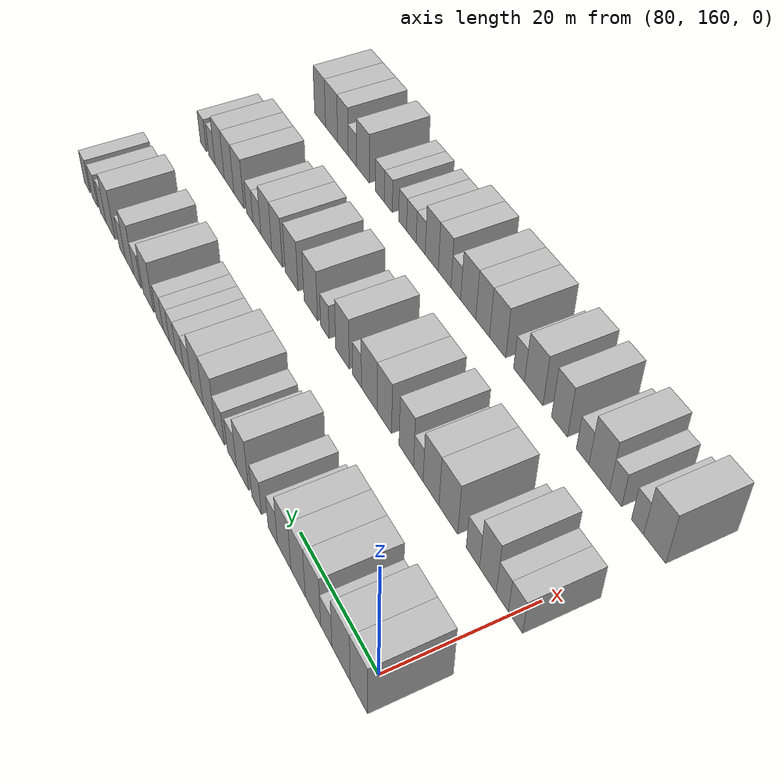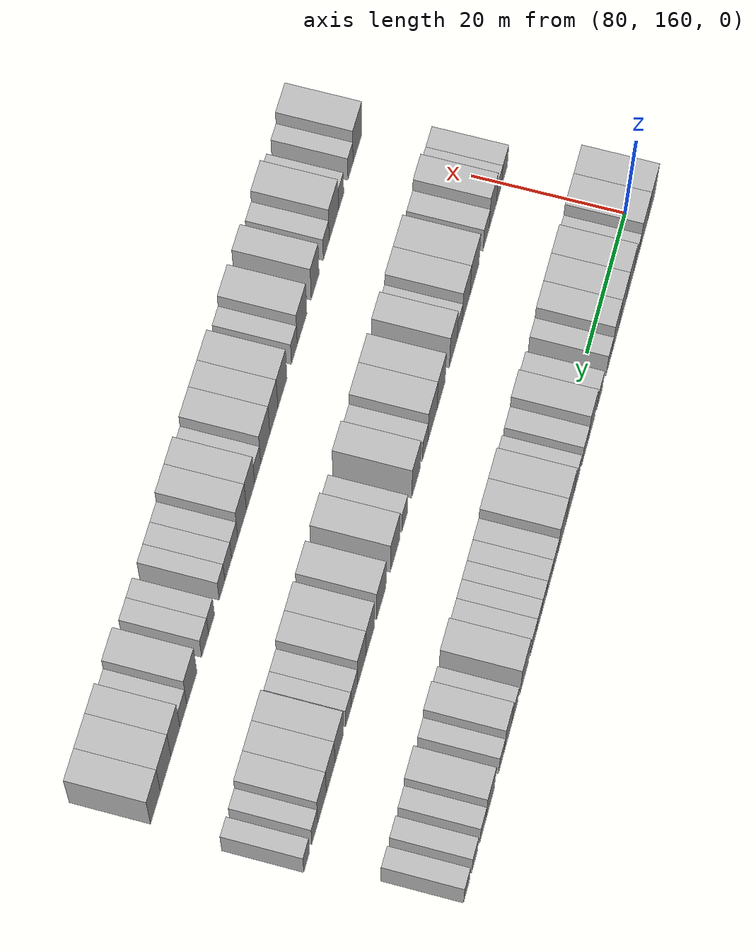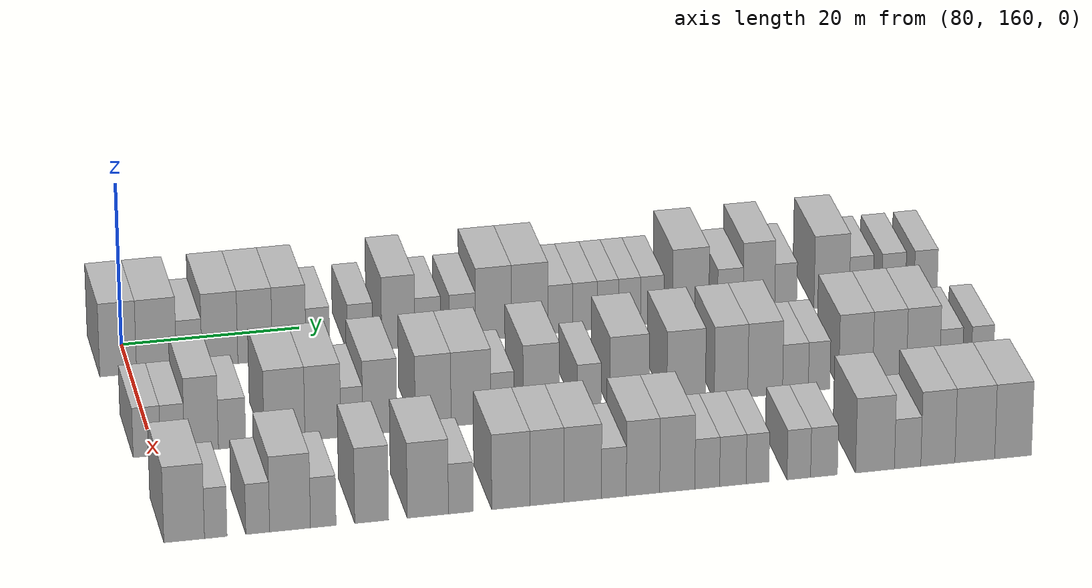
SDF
<sdf version="1.6">
 <world name="default">
  <model name="building_628">
   <static>1</static>
   <pose>82.0000 158.6415 0 0.000000 0.000000 0.000000</pose>
   <link name="link">
    <pose>0 0 4.50 0 0 0</pose>
    <collision name="collision"><geometry><box><size>10.0000 4.0877 9.0000</size></box></geometry></collision>
    <visual name="visual">
     <cast_shadows>0</cast_shadows>
     <geometry><box><size>10.0000 4.0877 9.0000</size></box></geometry>
     <material>
      <script>
       <uri>model://HANNAS_wall/materials/scripts</uri>
       <uri>model://HANNAS_wall/materials/textures</uri>
       <name>vrc/HANNAS_wall</name>
      </script>
     </material>
    </visual>
   </link>
  </model>
  <model name="building_629">
   <static>1</static>
   <pose>82.0000 162.9138 0 0.000000 0.000000 0.000000</pose>
   <link name="link">
    <pose>0 0 4.50 0 0 0</pose>
    <collision name="collision"><geometry><box><size>10.0000 4.4569 9.0000</size></box></geometry></collision>
    <visual name="visual">
     <cast_shadows>0</cast_shadows>
     <geometry><box><size>10.0000 4.4569 9.0000</size></box></geometry>
     <material>
      <script>
       <uri>model://HANNAS_wall/materials/scripts</uri>
       <uri>model://HANNAS_wall/materials/textures</uri>
       <name>vrc/HANNAS_wall</name>
      </script>
     </material>
    </visual>
   </link>
  </model>
  <model name="building_630">
   <static>1</static>
   <pose>82.0000 166.5588 0 0.000000 0.000000 0.000000</pose>
   <link name="link">
    <pose>0 0 3.00 0 0 0</pose>
    <collision name="collision"><geometry><box><size>10.0000 2.8331 6.0000</size></box></geometry></collision>
    <visual name="visual">
     <cast_shadows>0</cast_shadows>
     <geometry><box><size>10.0000 2.8331 6.0000</size></box></geometry>
     <material>
      <script>
       <uri>model://HANNAS_wall/materials/scripts</uri>
       <uri>model://HANNAS_wall/materials/textures</uri>
       <name>vrc/HANNAS_wall</name>
      </script>
     </material>
    </visual>
   </link>
  </model>
  <model name="building_631">
   <static>1</static>
   <pose>82.0000 169.9791 0 0.000000 0.000000 0.000000</pose>
   <link name="link">
    <pose>0 0 4.50 0 0 0</pose>
    <collision name="collision"><geometry><box><size>10.0000 4.0073 9.0000</size></box></geometry></collision>
    <visual name="visual">
     <cast_shadows>0</cast_shadows>
     <geometry><box><size>10.0000 4.0073 9.0000</size></box></geometry>
     <material>
      <script>
       <uri>model://HANNAS_wall/materials/scripts</uri>
       <uri>model://HANNAS_wall/materials/textures</uri>
       <name>vrc/HANNAS_wall</name>
      </script>
     </material>
    </visual>
   </link>
  </model>
  <model name="building_632">
   <static>1</static>
   <pose>82.0000 173.9178 0 0.000000 0.000000 0.000000</pose>
   <link name="link">
    <pose>0 0 4.50 0 0 0</pose>
    <collision name="collision"><geometry><box><size>10.0000 3.8701 9.0000</size></box></geometry></collision>
    <visual name="visual">
     <cast_shadows>0</cast_shadows>
     <geometry><box><size>10.0000 3.8701 9.0000</size></box></geometry>
     <material>
      <script>
       <uri>model://HANNAS_wall/materials/scripts</uri>
       <uri>model://HANNAS_wall/materials/textures</uri>
       <name>vrc/HANNAS_wall</name>
      </script>
     </material>
    </visual>
   </link>
  </model>
  <model name="building_633">
   <static>1</static>
   <pose>82.0000 177.7378 0 0.000000 0.000000 0.000000</pose>
   <link name="link">
    <pose>0 0 4.50 0 0 0</pose>
    <collision name="collision"><geometry><box><size>10.0000 3.7699 9.0000</size></box></geometry></collision>
    <visual name="visual">
     <cast_shadows>0</cast_shadows>
     <geometry><box><size>10.0000 3.7699 9.0000</size></box></geometry>
     <material>
      <script>
       <uri>model://HANNAS_wall/materials/scripts</uri>
       <uri>model://HANNAS_wall/materials/textures</uri>
       <name>vrc/HANNAS_wall</name>
      </script>
     </material>
    </visual>
   </link>
  </model>
  <model name="building_634">
   <static>1</static>
   <pose>82.0000 180.9577 0 0.000000 0.000000 0.000000</pose>
   <link name="link">
    <pose>0 0 3.00 0 0 0</pose>
    <collision name="collision"><geometry><box><size>10.0000 2.6698 6.0000</size></box></geometry></collision>
    <visual name="visual">
     <cast_shadows>0</cast_shadows>
     <geometry><box><size>10.0000 2.6698 6.0000</size></box></geometry>
     <material>
      <script>
       <uri>model://HANNAS_wall/materials/scripts</uri>
       <uri>model://HANNAS_wall/materials/textures</uri>
       <name>vrc/HANNAS_wall</name>
      </script>
     </material>
    </visual>
   </link>
  </model>
  <model name="building_635">
   <static>1</static>
   <pose>82.0000 185.7147 0 0.000000 0.000000 0.000000</pose>
   <link name="link">
    <pose>0 0 3.00 0 0 0</pose>
    <collision name="collision"><geometry><box><size>10.0000 2.8443 6.0000</size></box></geometry></collision>
    <visual name="visual">
     <cast_shadows>0</cast_shadows>
     <geometry><box><size>10.0000 2.8443 6.0000</size></box></geometry>
     <material>
      <script>
       <uri>model://HANNAS_wall/materials/scripts</uri>
       <uri>model://HANNAS_wall/materials/textures</uri>
       <name>vrc/HANNAS_wall</name>
      </script>
     </material>
    </visual>
   </link>
  </model>
  <model name="building_636">
   <static>1</static>
   <pose>82.0000 190.0058 0 0.000000 0.000000 0.000000</pose>
   <link name="link">
    <pose>0 0 4.50 0 0 0</pose>
    <collision name="collision"><geometry><box><size>10.0000 3.7380 9.0000</size></box></geometry></collision>
    <visual name="visual">
     <cast_shadows>0</cast_shadows>
     <geometry><box><size>10.0000 3.7380 9.0000</size></box></geometry>
     <material>
      <script>
       <uri>model://HANNAS_wall/materials/scripts</uri>
       <uri>model://HANNAS_wall/materials/textures</uri>
       <name>vrc/HANNAS_wall</name>
      </script>
     </material>
    </visual>
   </link>
  </model>
  <model name="building_637">
   <static>1</static>
   <pose>82.0000 193.3258 0 0.000000 0.000000 0.000000</pose>
   <link name="link">
    <pose>0 0 3.00 0 0 0</pose>
    <collision name="collision"><geometry><box><size>10.0000 2.9021 6.0000</size></box></geometry></collision>
    <visual name="visual">
     <cast_shadows>0</cast_shadows>
     <geometry><box><size>10.0000 2.9021 6.0000</size></box></geometry>
     <material>
      <script>
       <uri>model://HANNAS_wall/materials/scripts</uri>
       <uri>model://HANNAS_wall/materials/textures</uri>
       <name>vrc/HANNAS_wall</name>
      </script>
     </material>
    </visual>
   </link>
  </model>
  <model name="building_638">
   <static>1</static>
   <pose>82.0000 197.2572 0 0.000000 0.000000 0.000000</pose>
   <link name="link">
    <pose>0 0 3.00 0 0 0</pose>
    <collision name="collision"><geometry><box><size>10.0000 2.9607 6.0000</size></box></geometry></collision>
    <visual name="visual">
     <cast_shadows>0</cast_shadows>
     <geometry><box><size>10.0000 2.9607 6.0000</size></box></geometry>
     <material>
      <script>
       <uri>model://HANNAS_wall/materials/scripts</uri>
       <uri>model://HANNAS_wall/materials/textures</uri>
       <name>vrc/HANNAS_wall</name>
      </script>
     </material>
    </visual>
   </link>
  </model>
  <model name="building_639">
   <static>1</static>
   <pose>82.0000 200.7752 0 0.000000 0.000000 0.000000</pose>
   <link name="link">
    <pose>0 0 4.50 0 0 0</pose>
    <collision name="collision"><geometry><box><size>10.0000 4.0753 9.0000</size></box></geometry></collision>
    <visual name="visual">
     <cast_shadows>0</cast_shadows>
     <geometry><box><size>10.0000 4.0753 9.0000</size></box></geometry>
     <material>
      <script>
       <uri>model://HANNAS_wall/materials/scripts</uri>
       <uri>model://HANNAS_wall/materials/textures</uri>
       <name>vrc/HANNAS_wall</name>
      </script>
     </material>
    </visual>
   </link>
  </model>
  <model name="building_640">
   <static>1</static>
   <pose>82.0000 204.8756 0 0.000000 0.000000 0.000000</pose>
   <link name="link">
    <pose>0 0 4.50 0 0 0</pose>
    <collision name="collision"><geometry><box><size>10.0000 4.1255 9.0000</size></box></geometry></collision>
    <visual name="visual">
     <cast_shadows>0</cast_shadows>
     <geometry><box><size>10.0000 4.1255 9.0000</size></box></geometry>
     <material>
      <script>
       <uri>model://HANNAS_wall/materials/scripts</uri>
       <uri>model://HANNAS_wall/materials/textures</uri>
       <name>vrc/HANNAS_wall</name>
      </script>
     </material>
    </visual>
   </link>
  </model>
  <model name="building_641">
   <static>1</static>
   <pose>82.0000 208.3537 0 0.000000 0.000000 0.000000</pose>
   <link name="link">
    <pose>0 0 3.00 0 0 0</pose>
    <collision name="collision"><geometry><box><size>10.0000 2.8305 6.0000</size></box></geometry></collision>
    <visual name="visual">
     <cast_shadows>0</cast_shadows>
     <geometry><box><size>10.0000 2.8305 6.0000</size></box></geometry>
     <material>
      <script>
       <uri>model://HANNAS_wall/materials/scripts</uri>
       <uri>model://HANNAS_wall/materials/textures</uri>
       <name>vrc/HANNAS_wall</name>
      </script>
     </material>
    </visual>
   </link>
  </model>
  <model name="building_642">
   <static>1</static>
   <pose>82.0000 211.1578 0 0.000000 0.000000 0.000000</pose>
   <link name="link">
    <pose>0 0 3.00 0 0 0</pose>
    <collision name="collision"><geometry><box><size>10.0000 2.7777 6.0000</size></box></geometry></collision>
    <visual name="visual">
     <cast_shadows>0</cast_shadows>
     <geometry><box><size>10.0000 2.7777 6.0000</size></box></geometry>
     <material>
      <script>
       <uri>model://HANNAS_wall/materials/scripts</uri>
       <uri>model://HANNAS_wall/materials/textures</uri>
       <name>vrc/HANNAS_wall</name>
      </script>
     </material>
    </visual>
   </link>
  </model>
  <model name="building_643">
   <static>1</static>
   <pose>82.0000 213.7684 0 0.000000 0.000000 0.000000</pose>
   <link name="link">
    <pose>0 0 3.00 0 0 0</pose>
    <collision name="collision"><geometry><box><size>10.0000 2.4436 6.0000</size></box></geometry></collision>
    <visual name="visual">
     <cast_shadows>0</cast_shadows>
     <geometry><box><size>10.0000 2.4436 6.0000</size></box></geometry>
     <material>
      <script>
       <uri>model://HANNAS_wall/materials/scripts</uri>
       <uri>model://HANNAS_wall/materials/textures</uri>
       <name>vrc/HANNAS_wall</name>
      </script>
     </material>
    </visual>
   </link>
  </model>
  <model name="building_644">
   <static>1</static>
   <pose>82.0000 216.2495 0 0.000000 0.000000 0.000000</pose>
   <link name="link">
    <pose>0 0 3.00 0 0 0</pose>
    <collision name="collision"><geometry><box><size>10.0000 2.5188 6.0000</size></box></geometry></collision>
    <visual name="visual">
     <cast_shadows>0</cast_shadows>
     <geometry><box><size>10.0000 2.5188 6.0000</size></box></geometry>
     <material>
      <script>
       <uri>model://HANNAS_wall/materials/scripts</uri>
       <uri>model://HANNAS_wall/materials/textures</uri>
       <name>vrc/HANNAS_wall</name>
      </script>
     </material>
    </visual>
   </link>
  </model>
  <model name="building_645">
   <static>1</static>
   <pose>82.0000 218.8351 0 0.000000 0.000000 0.000000</pose>
   <link name="link">
    <pose>0 0 3.00 0 0 0</pose>
    <collision name="collision"><geometry><box><size>10.0000 2.6524 6.0000</size></box></geometry></collision>
    <visual name="visual">
     <cast_shadows>0</cast_shadows>
     <geometry><box><size>10.0000 2.6524 6.0000</size></box></geometry>
     <material>
      <script>
       <uri>model://HANNAS_wall/materials/scripts</uri>
       <uri>model://HANNAS_wall/materials/textures</uri>
       <name>vrc/HANNAS_wall</name>
      </script>
     </material>
    </visual>
   </link>
  </model>
  <model name="building_646">
   <static>1</static>
   <pose>82.0000 223.2501 0 0.000000 0.000000 0.000000</pose>
   <link name="link">
    <pose>0 0 4.50 0 0 0</pose>
    <collision name="collision"><geometry><box><size>10.0000 4.1776 9.0000</size></box></geometry></collision>
    <visual name="visual">
     <cast_shadows>0</cast_shadows>
     <geometry><box><size>10.0000 4.1776 9.0000</size></box></geometry>
     <material>
      <script>
       <uri>model://HANNAS_wall/materials/scripts</uri>
       <uri>model://HANNAS_wall/materials/textures</uri>
       <name>vrc/HANNAS_wall</name>
      </script>
     </material>
    </visual>
   </link>
  </model>
  <model name="building_647">
   <static>1</static>
   <pose>82.0000 227.7997 0 0.000000 0.000000 0.000000</pose>
   <link name="link">
    <pose>0 0 3.00 0 0 0</pose>
    <collision name="collision"><geometry><box><size>10.0000 2.9217 6.0000</size></box></geometry></collision>
    <visual name="visual">
     <cast_shadows>0</cast_shadows>
     <geometry><box><size>10.0000 2.9217 6.0000</size></box></geometry>
     <material>
      <script>
       <uri>model://HANNAS_wall/materials/scripts</uri>
       <uri>model://HANNAS_wall/materials/textures</uri>
       <name>vrc/HANNAS_wall</name>
      </script>
     </material>
    </visual>
   </link>
  </model>
  <model name="building_648">
   <static>1</static>
   <pose>82.0000 231.0891 0 0.000000 0.000000 0.000000</pose>
   <link name="link">
    <pose>0 0 4.50 0 0 0</pose>
    <collision name="collision"><geometry><box><size>10.0000 3.6570 9.0000</size></box></geometry></collision>
    <visual name="visual">
     <cast_shadows>0</cast_shadows>
     <geometry><box><size>10.0000 3.6570 9.0000</size></box></geometry>
     <material>
      <script>
       <uri>model://HANNAS_wall/materials/scripts</uri>
       <uri>model://HANNAS_wall/materials/textures</uri>
       <name>vrc/HANNAS_wall</name>
      </script>
     </material>
    </visual>
   </link>
  </model>
  <model name="building_649">
   <static>1</static>
   <pose>82.0000 234.1872 0 0.000000 0.000000 0.000000</pose>
   <link name="link">
    <pose>0 0 3.00 0 0 0</pose>
    <collision name="collision"><geometry><box><size>10.0000 2.5393 6.0000</size></box></geometry></collision>
    <visual name="visual">
     <cast_shadows>0</cast_shadows>
     <geometry><box><size>10.0000 2.5393 6.0000</size></box></geometry>
     <material>
      <script>
       <uri>model://HANNAS_wall/materials/scripts</uri>
       <uri>model://HANNAS_wall/materials/textures</uri>
       <name>vrc/HANNAS_wall</name>
      </script>
     </material>
    </visual>
   </link>
  </model>
  <model name="building_650">
   <static>1</static>
   <pose>82.0000 239.4980 0 0.000000 0.000000 0.000000</pose>
   <link name="link">
    <pose>0 0 4.50 0 0 0</pose>
    <collision name="collision"><geometry><box><size>10.0000 4.0824 9.0000</size></box></geometry></collision>
    <visual name="visual">
     <cast_shadows>0</cast_shadows>
     <geometry><box><size>10.0000 4.0824 9.0000</size></box></geometry>
     <material>
      <script>
       <uri>model://HANNAS_wall/materials/scripts</uri>
       <uri>model://HANNAS_wall/materials/textures</uri>
       <name>vrc/HANNAS_wall</name>
      </script>
     </material>
    </visual>
   </link>
  </model>
  <model name="building_651">
   <static>1</static>
   <pose>82.0000 242.9145 0 0.000000 0.000000 0.000000</pose>
   <link name="link">
    <pose>0 0 3.00 0 0 0</pose>
    <collision name="collision"><geometry><box><size>10.0000 2.7506 6.0000</size></box></geometry></collision>
    <visual name="visual">
     <cast_shadows>0</cast_shadows>
     <geometry><box><size>10.0000 2.7506 6.0000</size></box></geometry>
     <material>
      <script>
       <uri>model://HANNAS_wall/materials/scripts</uri>
       <uri>model://HANNAS_wall/materials/textures</uri>
       <name>vrc/HANNAS_wall</name>
      </script>
     </material>
    </visual>
   </link>
  </model>
  <model name="building_652">
   <static>1</static>
   <pose>82.0000 246.6687 0 0.000000 0.000000 0.000000</pose>
   <link name="link">
    <pose>0 0 3.00 0 0 0</pose>
    <collision name="collision"><geometry><box><size>10.0000 2.7577 6.0000</size></box></geometry></collision>
    <visual name="visual">
     <cast_shadows>0</cast_shadows>
     <geometry><box><size>10.0000 2.7577 6.0000</size></box></geometry>
     <material>
      <script>
       <uri>model://HANNAS_wall/materials/scripts</uri>
       <uri>model://HANNAS_wall/materials/textures</uri>
       <name>vrc/HANNAS_wall</name>
      </script>
     </material>
    </visual>
   </link>
  </model>
  <model name="building_653">
   <static>1</static>
   <pose>82.0000 250.3901 0 0.000000 0.000000 0.000000</pose>
   <link name="link">
    <pose>0 0 3.00 0 0 0</pose>
    <collision name="collision"><geometry><box><size>10.0000 2.6852 6.0000</size></box></geometry></collision>
    <visual name="visual">
     <cast_shadows>0</cast_shadows>
     <geometry><box><size>10.0000 2.6852 6.0000</size></box></geometry>
     <material>
      <script>
       <uri>model://HANNAS_wall/materials/scripts</uri>
       <uri>model://HANNAS_wall/materials/textures</uri>
       <name>vrc/HANNAS_wall</name>
      </script>
     </material>
    </visual>
   </link>
  </model>
  <model name="building_816">
   <static>1</static>
   <pose>101.0000 159.0080 0 0.000000 0.000000 0.000000</pose>
   <link name="link">
    <pose>0 0 3.00 0 0 0</pose>
    <collision name="collision"><geometry><box><size>10.0000 2.9730 6.0000</size></box></geometry></collision>
    <visual name="visual">
     <cast_shadows>0</cast_shadows>
     <geometry><box><size>10.0000 2.9730 6.0000</size></box></geometry>
     <material>
      <script>
       <uri>model://HANNAS_wall/materials/scripts</uri>
       <uri>model://HANNAS_wall/materials/textures</uri>
       <name>vrc/HANNAS_wall</name>
      </script>
     </material>
    </visual>
   </link>
  </model>
  <model name="building_817">
   <static>1</static>
   <pose>101.0000 161.8011 0 0.000000 0.000000 0.000000</pose>
   <link name="link">
    <pose>0 0 3.00 0 0 0</pose>
    <collision name="collision"><geometry><box><size>10.0000 2.6131 6.0000</size></box></geometry></collision>
    <visual name="visual">
     <cast_shadows>0</cast_shadows>
     <geometry><box><size>10.0000 2.6131 6.0000</size></box></geometry>
     <material>
      <script>
       <uri>model://HANNAS_wall/materials/scripts</uri>
       <uri>model://HANNAS_wall/materials/textures</uri>
       <name>vrc/HANNAS_wall</name>
      </script>
     </material>
    </visual>
   </link>
  </model>
  <model name="building_818">
   <static>1</static>
   <pose>101.0000 164.9502 0 0.000000 0.000000 0.000000</pose>
   <link name="link">
    <pose>0 0 4.50 0 0 0</pose>
    <collision name="collision"><geometry><box><size>10.0000 3.6851 9.0000</size></box></geometry></collision>
    <visual name="visual">
     <cast_shadows>0</cast_shadows>
     <geometry><box><size>10.0000 3.6851 9.0000</size></box></geometry>
     <material>
      <script>
       <uri>model://HANNAS_wall/materials/scripts</uri>
       <uri>model://HANNAS_wall/materials/textures</uri>
       <name>vrc/HANNAS_wall</name>
      </script>
     </material>
    </visual>
   </link>
  </model>
  <model name="building_819">
   <static>1</static>
   <pose>101.0000 168.2881 0 0.000000 0.000000 0.000000</pose>
   <link name="link">
    <pose>0 0 3.00 0 0 0</pose>
    <collision name="collision"><geometry><box><size>10.0000 2.9908 6.0000</size></box></geometry></collision>
    <visual name="visual">
     <cast_shadows>0</cast_shadows>
     <geometry><box><size>10.0000 2.9908 6.0000</size></box></geometry>
     <material>
      <script>
       <uri>model://HANNAS_wall/materials/scripts</uri>
       <uri>model://HANNAS_wall/materials/textures</uri>
       <name>vrc/HANNAS_wall</name>
      </script>
     </material>
    </visual>
   </link>
  </model>
  <model name="building_820">
   <static>1</static>
   <pose>101.0000 174.0157 0 0.000000 0.000000 0.000000</pose>
   <link name="link">
    <pose>0 0 4.50 0 0 0</pose>
    <collision name="collision"><geometry><box><size>10.0000 4.4643 9.0000</size></box></geometry></collision>
    <visual name="visual">
     <cast_shadows>0</cast_shadows>
     <geometry><box><size>10.0000 4.4643 9.0000</size></box></geometry>
     <material>
      <script>
       <uri>model://HANNAS_wall/materials/scripts</uri>
       <uri>model://HANNAS_wall/materials/textures</uri>
       <name>vrc/HANNAS_wall</name>
      </script>
     </material>
    </visual>
   </link>
  </model>
  <model name="building_821">
   <static>1</static>
   <pose>101.0000 178.2155 0 0.000000 0.000000 0.000000</pose>
   <link name="link">
    <pose>0 0 4.50 0 0 0</pose>
    <collision name="collision"><geometry><box><size>10.0000 3.9353 9.0000</size></box></geometry></collision>
    <visual name="visual">
     <cast_shadows>0</cast_shadows>
     <geometry><box><size>10.0000 3.9353 9.0000</size></box></geometry>
     <material>
      <script>
       <uri>model://HANNAS_wall/materials/scripts</uri>
       <uri>model://HANNAS_wall/materials/textures</uri>
       <name>vrc/HANNAS_wall</name>
      </script>
     </material>
    </visual>
   </link>
  </model>
  <model name="building_822">
   <static>1</static>
   <pose>101.0000 181.3901 0 0.000000 0.000000 0.000000</pose>
   <link name="link">
    <pose>0 0 3.00 0 0 0</pose>
    <collision name="collision"><geometry><box><size>10.0000 2.4139 6.0000</size></box></geometry></collision>
    <visual name="visual">
     <cast_shadows>0</cast_shadows>
     <geometry><box><size>10.0000 2.4139 6.0000</size></box></geometry>
     <material>
      <script>
       <uri>model://HANNAS_wall/materials/scripts</uri>
       <uri>model://HANNAS_wall/materials/textures</uri>
       <name>vrc/HANNAS_wall</name>
      </script>
     </material>
    </visual>
   </link>
  </model>
  <model name="building_823">
   <static>1</static>
   <pose>101.0000 184.4804 0 0.000000 0.000000 0.000000</pose>
   <link name="link">
    <pose>0 0 4.50 0 0 0</pose>
    <collision name="collision"><geometry><box><size>10.0000 3.7667 9.0000</size></box></geometry></collision>
    <visual name="visual">
     <cast_shadows>0</cast_shadows>
     <geometry><box><size>10.0000 3.7667 9.0000</size></box></geometry>
     <material>
      <script>
       <uri>model://HANNAS_wall/materials/scripts</uri>
       <uri>model://HANNAS_wall/materials/textures</uri>
       <name>vrc/HANNAS_wall</name>
      </script>
     </material>
    </visual>
   </link>
  </model>
  <model name="building_824">
   <static>1</static>
   <pose>101.0000 190.3403 0 0.000000 0.000000 0.000000</pose>
   <link name="link">
    <pose>0 0 4.50 0 0 0</pose>
    <collision name="collision"><geometry><box><size>10.0000 3.9529 9.0000</size></box></geometry></collision>
    <visual name="visual">
     <cast_shadows>0</cast_shadows>
     <geometry><box><size>10.0000 3.9529 9.0000</size></box></geometry>
     <material>
      <script>
       <uri>model://HANNAS_wall/materials/scripts</uri>
       <uri>model://HANNAS_wall/materials/textures</uri>
       <name>vrc/HANNAS_wall</name>
      </script>
     </material>
    </visual>
   </link>
  </model>
  <model name="building_825">
   <static>1</static>
   <pose>101.0000 194.5216 0 0.000000 0.000000 0.000000</pose>
   <link name="link">
    <pose>0 0 4.50 0 0 0</pose>
    <collision name="collision"><geometry><box><size>10.0000 4.4097 9.0000</size></box></geometry></collision>
    <visual name="visual">
     <cast_shadows>0</cast_shadows>
     <geometry><box><size>10.0000 4.4097 9.0000</size></box></geometry>
     <material>
      <script>
       <uri>model://HANNAS_wall/materials/scripts</uri>
       <uri>model://HANNAS_wall/materials/textures</uri>
       <name>vrc/HANNAS_wall</name>
      </script>
     </material>
    </visual>
   </link>
  </model>
  <model name="building_826">
   <static>1</static>
   <pose>101.0000 198.0051 0 0.000000 0.000000 0.000000</pose>
   <link name="link">
    <pose>0 0 3.00 0 0 0</pose>
    <collision name="collision"><geometry><box><size>10.0000 2.5573 6.0000</size></box></geometry></collision>
    <visual name="visual">
     <cast_shadows>0</cast_shadows>
     <geometry><box><size>10.0000 2.5573 6.0000</size></box></geometry>
     <material>
      <script>
       <uri>model://HANNAS_wall/materials/scripts</uri>
       <uri>model://HANNAS_wall/materials/textures</uri>
       <name>vrc/HANNAS_wall</name>
      </script>
     </material>
    </visual>
   </link>
  </model>
  <model name="building_827">
   <static>1</static>
   <pose>101.0000 202.2995 0 0.000000 0.000000 0.000000</pose>
   <link name="link">
    <pose>0 0 4.50 0 0 0</pose>
    <collision name="collision"><geometry><box><size>10.0000 4.0315 9.0000</size></box></geometry></collision>
    <visual name="visual">
     <cast_shadows>0</cast_shadows>
     <geometry><box><size>10.0000 4.0315 9.0000</size></box></geometry>
     <material>
      <script>
       <uri>model://HANNAS_wall/materials/scripts</uri>
       <uri>model://HANNAS_wall/materials/textures</uri>
       <name>vrc/HANNAS_wall</name>
      </script>
     </material>
    </visual>
   </link>
  </model>
  <model name="building_828">
   <static>1</static>
   <pose>101.0000 207.6321 0 0.000000 0.000000 0.000000</pose>
   <link name="link">
    <pose>0 0 3.00 0 0 0</pose>
    <collision name="collision"><geometry><box><size>10.0000 2.6338 6.0000</size></box></geometry></collision>
    <visual name="visual">
     <cast_shadows>0</cast_shadows>
     <geometry><box><size>10.0000 2.6338 6.0000</size></box></geometry>
     <material>
      <script>
       <uri>model://HANNAS_wall/materials/scripts</uri>
       <uri>model://HANNAS_wall/materials/textures</uri>
       <name>vrc/HANNAS_wall</name>
      </script>
     </material>
    </visual>
   </link>
  </model>
  <model name="building_829">
   <static>1</static>
   <pose>101.0000 212.1212 0 0.000000 0.000000 0.000000</pose>
   <link name="link">
    <pose>0 0 4.50 0 0 0</pose>
    <collision name="collision"><geometry><box><size>10.0000 4.3445 9.0000</size></box></geometry></collision>
    <visual name="visual">
     <cast_shadows>0</cast_shadows>
     <geometry><box><size>10.0000 4.3445 9.0000</size></box></geometry>
     <material>
      <script>
       <uri>model://HANNAS_wall/materials/scripts</uri>
       <uri>model://HANNAS_wall/materials/textures</uri>
       <name>vrc/HANNAS_wall</name>
      </script>
     </material>
    </visual>
   </link>
  </model>
  <model name="building_830">
   <static>1</static>
   <pose>101.0000 218.4484 0 0.000000 0.000000 0.000000</pose>
   <link name="link">
    <pose>0 0 4.50 0 0 0</pose>
    <collision name="collision"><geometry><box><size>10.0000 4.3099 9.0000</size></box></geometry></collision>
    <visual name="visual">
     <cast_shadows>0</cast_shadows>
     <geometry><box><size>10.0000 4.3099 9.0000</size></box></geometry>
     <material>
      <script>
       <uri>model://HANNAS_wall/materials/scripts</uri>
       <uri>model://HANNAS_wall/materials/textures</uri>
       <name>vrc/HANNAS_wall</name>
      </script>
     </material>
    </visual>
   </link>
  </model>
  <model name="building_831">
   <static>1</static>
   <pose>101.0000 223.4815 0 0.000000 0.000000 0.000000</pose>
   <link name="link">
    <pose>0 0 4.50 0 0 0</pose>
    <collision name="collision"><geometry><box><size>10.0000 3.7563 9.0000</size></box></geometry></collision>
    <visual name="visual">
     <cast_shadows>0</cast_shadows>
     <geometry><box><size>10.0000 3.7563 9.0000</size></box></geometry>
     <material>
      <script>
       <uri>model://HANNAS_wall/materials/scripts</uri>
       <uri>model://HANNAS_wall/materials/textures</uri>
       <name>vrc/HANNAS_wall</name>
      </script>
     </material>
    </visual>
   </link>
  </model>
  <model name="building_832">
   <static>1</static>
   <pose>101.0000 227.3154 0 0.000000 0.000000 0.000000</pose>
   <link name="link">
    <pose>0 0 4.50 0 0 0</pose>
    <collision name="collision"><geometry><box><size>10.0000 3.9116 9.0000</size></box></geometry></collision>
    <visual name="visual">
     <cast_shadows>0</cast_shadows>
     <geometry><box><size>10.0000 3.9116 9.0000</size></box></geometry>
     <material>
      <script>
       <uri>model://HANNAS_wall/materials/scripts</uri>
       <uri>model://HANNAS_wall/materials/textures</uri>
       <name>vrc/HANNAS_wall</name>
      </script>
     </material>
    </visual>
   </link>
  </model>
  <model name="building_833">
   <static>1</static>
   <pose>101.0000 230.7249 0 0.000000 0.000000 0.000000</pose>
   <link name="link">
    <pose>0 0 3.00 0 0 0</pose>
    <collision name="collision"><geometry><box><size>10.0000 2.9072 6.0000</size></box></geometry></collision>
    <visual name="visual">
     <cast_shadows>0</cast_shadows>
     <geometry><box><size>10.0000 2.9072 6.0000</size></box></geometry>
     <material>
      <script>
       <uri>model://HANNAS_wall/materials/scripts</uri>
       <uri>model://HANNAS_wall/materials/textures</uri>
       <name>vrc/HANNAS_wall</name>
      </script>
     </material>
    </visual>
   </link>
  </model>
  <model name="building_834">
   <static>1</static>
   <pose>101.0000 233.3895 0 0.000000 0.000000 0.000000</pose>
   <link name="link">
    <pose>0 0 3.00 0 0 0</pose>
    <collision name="collision"><geometry><box><size>10.0000 2.4219 6.0000</size></box></geometry></collision>
    <visual name="visual">
     <cast_shadows>0</cast_shadows>
     <geometry><box><size>10.0000 2.4219 6.0000</size></box></geometry>
     <material>
      <script>
       <uri>model://HANNAS_wall/materials/scripts</uri>
       <uri>model://HANNAS_wall/materials/textures</uri>
       <name>vrc/HANNAS_wall</name>
      </script>
     </material>
    </visual>
   </link>
  </model>
  <model name="building_835">
   <static>1</static>
   <pose>101.0000 237.5209 0 0.000000 0.000000 0.000000</pose>
   <link name="link">
    <pose>0 0 4.50 0 0 0</pose>
    <collision name="collision"><geometry><box><size>10.0000 3.8409 9.0000</size></box></geometry></collision>
    <visual name="visual">
     <cast_shadows>0</cast_shadows>
     <geometry><box><size>10.0000 3.8409 9.0000</size></box></geometry>
     <material>
      <script>
       <uri>model://HANNAS_wall/materials/scripts</uri>
       <uri>model://HANNAS_wall/materials/textures</uri>
       <name>vrc/HANNAS_wall</name>
      </script>
     </material>
    </visual>
   </link>
  </model>
  <model name="building_836">
   <static>1</static>
   <pose>101.0000 241.3496 0 0.000000 0.000000 0.000000</pose>
   <link name="link">
    <pose>0 0 4.50 0 0 0</pose>
    <collision name="collision"><geometry><box><size>10.0000 3.8165 9.0000</size></box></geometry></collision>
    <visual name="visual">
     <cast_shadows>0</cast_shadows>
     <geometry><box><size>10.0000 3.8165 9.0000</size></box></geometry>
     <material>
      <script>
       <uri>model://HANNAS_wall/materials/scripts</uri>
       <uri>model://HANNAS_wall/materials/textures</uri>
       <name>vrc/HANNAS_wall</name>
      </script>
     </material>
    </visual>
   </link>
  </model>
  <model name="building_837">
   <static>1</static>
   <pose>101.0000 245.1427 0 0.000000 0.000000 0.000000</pose>
   <link name="link">
    <pose>0 0 4.50 0 0 0</pose>
    <collision name="collision"><geometry><box><size>10.0000 3.7698 9.0000</size></box></geometry></collision>
    <visual name="visual">
     <cast_shadows>0</cast_shadows>
     <geometry><box><size>10.0000 3.7698 9.0000</size></box></geometry>
     <material>
      <script>
       <uri>model://HANNAS_wall/materials/scripts</uri>
       <uri>model://HANNAS_wall/materials/textures</uri>
       <name>vrc/HANNAS_wall</name>
      </script>
     </material>
    </visual>
   </link>
  </model>
  <model name="building_838">
   <static>1</static>
   <pose>101.0000 248.3160 0 0.000000 0.000000 0.000000</pose>
   <link name="link">
    <pose>0 0 3.00 0 0 0</pose>
    <collision name="collision"><geometry><box><size>10.0000 2.5767 6.0000</size></box></geometry></collision>
    <visual name="visual">
     <cast_shadows>0</cast_shadows>
     <geometry><box><size>10.0000 2.5767 6.0000</size></box></geometry>
     <material>
      <script>
       <uri>model://HANNAS_wall/materials/scripts</uri>
       <uri>model://HANNAS_wall/materials/textures</uri>
       <name>vrc/HANNAS_wall</name>
      </script>
     </material>
    </visual>
   </link>
  </model>
  <model name="building_839">
   <static>1</static>
   <pose>101.0000 251.8603 0 0.000000 0.000000 0.000000</pose>
   <link name="link">
    <pose>0 0 3.00 0 0 0</pose>
    <collision name="collision"><geometry><box><size>10.0000 2.5121 6.0000</size></box></geometry></collision>
    <visual name="visual">
     <cast_shadows>0</cast_shadows>
     <geometry><box><size>10.0000 2.5121 6.0000</size></box></geometry>
     <material>
      <script>
       <uri>model://HANNAS_wall/materials/scripts</uri>
       <uri>model://HANNAS_wall/materials/textures</uri>
       <name>vrc/HANNAS_wall</name>
      </script>
     </material>
    </visual>
   </link>
  </model>
  <model name="building_989">
   <static>1</static>
   <pose>120.0000 160.1342 0 0.000000 0.000000 0.000000</pose>
   <link name="link">
    <pose>0 0 4.50 0 0 0</pose>
    <collision name="collision"><geometry><box><size>10.0000 4.3118 9.0000</size></box></geometry></collision>
    <visual name="visual">
     <cast_shadows>0</cast_shadows>
     <geometry><box><size>10.0000 4.3118 9.0000</size></box></geometry>
     <material>
      <script>
       <uri>model://HANNAS_wall/materials/scripts</uri>
       <uri>model://HANNAS_wall/materials/textures</uri>
       <name>vrc/HANNAS_wall</name>
      </script>
     </material>
    </visual>
   </link>
  </model>
  <model name="building_990">
   <static>1</static>
   <pose>120.0000 163.4912 0 0.000000 0.000000 0.000000</pose>
   <link name="link">
    <pose>0 0 3.00 0 0 0</pose>
    <collision name="collision"><geometry><box><size>10.0000 2.4020 6.0000</size></box></geometry></collision>
    <visual name="visual">
     <cast_shadows>0</cast_shadows>
     <geometry><box><size>10.0000 2.4020 6.0000</size></box></geometry>
     <material>
      <script>
       <uri>model://HANNAS_wall/materials/scripts</uri>
       <uri>model://HANNAS_wall/materials/textures</uri>
       <name>vrc/HANNAS_wall</name>
      </script>
     </material>
    </visual>
   </link>
  </model>
  <model name="building_991">
   <static>1</static>
   <pose>120.0000 167.9578 0 0.000000 0.000000 0.000000</pose>
   <link name="link">
    <pose>0 0 3.00 0 0 0</pose>
    <collision name="collision"><geometry><box><size>10.0000 2.5313 6.0000</size></box></geometry></collision>
    <visual name="visual">
     <cast_shadows>0</cast_shadows>
     <geometry><box><size>10.0000 2.5313 6.0000</size></box></geometry>
     <material>
      <script>
       <uri>model://HANNAS_wall/materials/scripts</uri>
       <uri>model://HANNAS_wall/materials/textures</uri>
       <name>vrc/HANNAS_wall</name>
      </script>
     </material>
    </visual>
   </link>
  </model>
  <model name="building_992">
   <static>1</static>
   <pose>120.0000 171.4043 0 0.000000 0.000000 0.000000</pose>
   <link name="link">
    <pose>0 0 4.50 0 0 0</pose>
    <collision name="collision"><geometry><box><size>10.0000 4.3617 9.0000</size></box></geometry></collision>
    <visual name="visual">
     <cast_shadows>0</cast_shadows>
     <geometry><box><size>10.0000 4.3617 9.0000</size></box></geometry>
     <material>
      <script>
       <uri>model://HANNAS_wall/materials/scripts</uri>
       <uri>model://HANNAS_wall/materials/textures</uri>
       <name>vrc/HANNAS_wall</name>
      </script>
     </material>
    </visual>
   </link>
  </model>
  <model name="building_993">
   <static>1</static>
   <pose>120.0000 174.9528 0 0.000000 0.000000 0.000000</pose>
   <link name="link">
    <pose>0 0 3.00 0 0 0</pose>
    <collision name="collision"><geometry><box><size>10.0000 2.7353 6.0000</size></box></geometry></collision>
    <visual name="visual">
     <cast_shadows>0</cast_shadows>
     <geometry><box><size>10.0000 2.7353 6.0000</size></box></geometry>
     <material>
      <script>
       <uri>model://HANNAS_wall/materials/scripts</uri>
       <uri>model://HANNAS_wall/materials/textures</uri>
       <name>vrc/HANNAS_wall</name>
      </script>
     </material>
    </visual>
   </link>
  </model>
  <model name="building_994">
   <static>1</static>
   <pose>120.0000 180.1389 0 0.000000 0.000000 0.000000</pose>
   <link name="link">
    <pose>0 0 4.50 0 0 0</pose>
    <collision name="collision"><geometry><box><size>10.0000 3.6368 9.0000</size></box></geometry></collision>
    <visual name="visual">
     <cast_shadows>0</cast_shadows>
     <geometry><box><size>10.0000 3.6368 9.0000</size></box></geometry>
     <material>
      <script>
       <uri>model://HANNAS_wall/materials/scripts</uri>
       <uri>model://HANNAS_wall/materials/textures</uri>
       <name>vrc/HANNAS_wall</name>
      </script>
     </material>
    </visual>
   </link>
  </model>
  <model name="building_995">
   <static>1</static>
   <pose>120.0000 186.1678 0 0.000000 0.000000 0.000000</pose>
   <link name="link">
    <pose>0 0 4.50 0 0 0</pose>
    <collision name="collision"><geometry><box><size>10.0000 4.4208 9.0000</size></box></geometry></collision>
    <visual name="visual">
     <cast_shadows>0</cast_shadows>
     <geometry><box><size>10.0000 4.4208 9.0000</size></box></geometry>
     <material>
      <script>
       <uri>model://HANNAS_wall/materials/scripts</uri>
       <uri>model://HANNAS_wall/materials/textures</uri>
       <name>vrc/HANNAS_wall</name>
      </script>
     </material>
    </visual>
   </link>
  </model>
  <model name="building_996">
   <static>1</static>
   <pose>120.0000 189.7123 0 0.000000 0.000000 0.000000</pose>
   <link name="link">
    <pose>0 0 3.00 0 0 0</pose>
    <collision name="collision"><geometry><box><size>10.0000 2.6682 6.0000</size></box></geometry></collision>
    <visual name="visual">
     <cast_shadows>0</cast_shadows>
     <geometry><box><size>10.0000 2.6682 6.0000</size></box></geometry>
     <material>
      <script>
       <uri>model://HANNAS_wall/materials/scripts</uri>
       <uri>model://HANNAS_wall/materials/textures</uri>
       <name>vrc/HANNAS_wall</name>
      </script>
     </material>
    </visual>
   </link>
  </model>
  <model name="building_997">
   <static>1</static>
   <pose>120.0000 195.1269 0 0.000000 0.000000 0.000000</pose>
   <link name="link">
    <pose>0 0 4.50 0 0 0</pose>
    <collision name="collision"><geometry><box><size>10.0000 4.1610 9.0000</size></box></geometry></collision>
    <visual name="visual">
     <cast_shadows>0</cast_shadows>
     <geometry><box><size>10.0000 4.1610 9.0000</size></box></geometry>
     <material>
      <script>
       <uri>model://HANNAS_wall/materials/scripts</uri>
       <uri>model://HANNAS_wall/materials/textures</uri>
       <name>vrc/HANNAS_wall</name>
      </script>
     </material>
    </visual>
   </link>
  </model>
  <model name="building_998">
   <static>1</static>
   <pose>120.0000 199.0245 0 0.000000 0.000000 0.000000</pose>
   <link name="link">
    <pose>0 0 4.50 0 0 0</pose>
    <collision name="collision"><geometry><box><size>10.0000 3.6341 9.0000</size></box></geometry></collision>
    <visual name="visual">
     <cast_shadows>0</cast_shadows>
     <geometry><box><size>10.0000 3.6341 9.0000</size></box></geometry>
     <material>
      <script>
       <uri>model://HANNAS_wall/materials/scripts</uri>
       <uri>model://HANNAS_wall/materials/textures</uri>
       <name>vrc/HANNAS_wall</name>
      </script>
     </material>
    </visual>
   </link>
  </model>
  <model name="building_999">
   <static>1</static>
   <pose>120.0000 202.8921 0 0.000000 0.000000 0.000000</pose>
   <link name="link">
    <pose>0 0 4.50 0 0 0</pose>
    <collision name="collision"><geometry><box><size>10.0000 4.1012 9.0000</size></box></geometry></collision>
    <visual name="visual">
     <cast_shadows>0</cast_shadows>
     <geometry><box><size>10.0000 4.1012 9.0000</size></box></geometry>
     <material>
      <script>
       <uri>model://HANNAS_wall/materials/scripts</uri>
       <uri>model://HANNAS_wall/materials/textures</uri>
       <name>vrc/HANNAS_wall</name>
      </script>
     </material>
    </visual>
   </link>
  </model>
  <model name="building_1000">
   <static>1</static>
   <pose>120.0000 206.2876 0 0.000000 0.000000 0.000000</pose>
   <link name="link">
    <pose>0 0 3.00 0 0 0</pose>
    <collision name="collision"><geometry><box><size>10.0000 2.6898 6.0000</size></box></geometry></collision>
    <visual name="visual">
     <cast_shadows>0</cast_shadows>
     <geometry><box><size>10.0000 2.6898 6.0000</size></box></geometry>
     <material>
      <script>
       <uri>model://HANNAS_wall/materials/scripts</uri>
       <uri>model://HANNAS_wall/materials/textures</uri>
       <name>vrc/HANNAS_wall</name>
      </script>
     </material>
    </visual>
   </link>
  </model>
  <model name="building_1001">
   <static>1</static>
   <pose>120.0000 209.4517 0 0.000000 0.000000 0.000000</pose>
   <link name="link">
    <pose>0 0 4.50 0 0 0</pose>
    <collision name="collision"><geometry><box><size>10.0000 3.6383 9.0000</size></box></geometry></collision>
    <visual name="visual">
     <cast_shadows>0</cast_shadows>
     <geometry><box><size>10.0000 3.6383 9.0000</size></box></geometry>
     <material>
      <script>
       <uri>model://HANNAS_wall/materials/scripts</uri>
       <uri>model://HANNAS_wall/materials/textures</uri>
       <name>vrc/HANNAS_wall</name>
      </script>
     </material>
    </visual>
   </link>
  </model>
  <model name="building_1002">
   <static>1</static>
   <pose>120.0000 213.1867 0 0.000000 0.000000 0.000000</pose>
   <link name="link">
    <pose>0 0 4.50 0 0 0</pose>
    <collision name="collision"><geometry><box><size>10.0000 3.8317 9.0000</size></box></geometry></collision>
    <visual name="visual">
     <cast_shadows>0</cast_shadows>
     <geometry><box><size>10.0000 3.8317 9.0000</size></box></geometry>
     <material>
      <script>
       <uri>model://HANNAS_wall/materials/scripts</uri>
       <uri>model://HANNAS_wall/materials/textures</uri>
       <name>vrc/HANNAS_wall</name>
      </script>
     </material>
    </visual>
   </link>
  </model>
  <model name="building_1003">
   <static>1</static>
   <pose>120.0000 216.4578 0 0.000000 0.000000 0.000000</pose>
   <link name="link">
    <pose>0 0 3.00 0 0 0</pose>
    <collision name="collision"><geometry><box><size>10.0000 2.7106 6.0000</size></box></geometry></collision>
    <visual name="visual">
     <cast_shadows>0</cast_shadows>
     <geometry><box><size>10.0000 2.7106 6.0000</size></box></geometry>
     <material>
      <script>
       <uri>model://HANNAS_wall/materials/scripts</uri>
       <uri>model://HANNAS_wall/materials/textures</uri>
       <name>vrc/HANNAS_wall</name>
      </script>
     </material>
    </visual>
   </link>
  </model>
  <model name="building_1004">
   <static>1</static>
   <pose>120.0000 219.2655 0 0.000000 0.000000 0.000000</pose>
   <link name="link">
    <pose>0 0 3.00 0 0 0</pose>
    <collision name="collision"><geometry><box><size>10.0000 2.9046 6.0000</size></box></geometry></collision>
    <visual name="visual">
     <cast_shadows>0</cast_shadows>
     <geometry><box><size>10.0000 2.9046 6.0000</size></box></geometry>
     <material>
      <script>
       <uri>model://HANNAS_wall/materials/scripts</uri>
       <uri>model://HANNAS_wall/materials/textures</uri>
       <name>vrc/HANNAS_wall</name>
      </script>
     </material>
    </visual>
   </link>
  </model>
  <model name="building_1005">
   <static>1</static>
   <pose>120.0000 221.9624 0 0.000000 0.000000 0.000000</pose>
   <link name="link">
    <pose>0 0 3.00 0 0 0</pose>
    <collision name="collision"><geometry><box><size>10.0000 2.4894 6.0000</size></box></geometry></collision>
    <visual name="visual">
     <cast_shadows>0</cast_shadows>
     <geometry><box><size>10.0000 2.4894 6.0000</size></box></geometry>
     <material>
      <script>
       <uri>model://HANNAS_wall/materials/scripts</uri>
       <uri>model://HANNAS_wall/materials/textures</uri>
       <name>vrc/HANNAS_wall</name>
      </script>
     </material>
    </visual>
   </link>
  </model>
  <model name="building_1006">
   <static>1</static>
   <pose>120.0000 226.4990 0 0.000000 0.000000 0.000000</pose>
   <link name="link">
    <pose>0 0 3.00 0 0 0</pose>
    <collision name="collision"><geometry><box><size>10.0000 2.5839 6.0000</size></box></geometry></collision>
    <visual name="visual">
     <cast_shadows>0</cast_shadows>
     <geometry><box><size>10.0000 2.5839 6.0000</size></box></geometry>
     <material>
      <script>
       <uri>model://HANNAS_wall/materials/scripts</uri>
       <uri>model://HANNAS_wall/materials/textures</uri>
       <name>vrc/HANNAS_wall</name>
      </script>
     </material>
    </visual>
   </link>
  </model>
  <model name="building_1007">
   <static>1</static>
   <pose>120.0000 229.2675 0 0.000000 0.000000 0.000000</pose>
   <link name="link">
    <pose>0 0 3.00 0 0 0</pose>
    <collision name="collision"><geometry><box><size>10.0000 2.9531 6.0000</size></box></geometry></collision>
    <visual name="visual">
     <cast_shadows>0</cast_shadows>
     <geometry><box><size>10.0000 2.9531 6.0000</size></box></geometry>
     <material>
      <script>
       <uri>model://HANNAS_wall/materials/scripts</uri>
       <uri>model://HANNAS_wall/materials/textures</uri>
       <name>vrc/HANNAS_wall</name>
      </script>
     </material>
    </visual>
   </link>
  </model>
  <model name="building_1008">
   <static>1</static>
   <pose>120.0000 234.8880 0 0.000000 0.000000 0.000000</pose>
   <link name="link">
    <pose>0 0 4.50 0 0 0</pose>
    <collision name="collision"><geometry><box><size>10.0000 4.2879 9.0000</size></box></geometry></collision>
    <visual name="visual">
     <cast_shadows>0</cast_shadows>
     <geometry><box><size>10.0000 4.2879 9.0000</size></box></geometry>
     <material>
      <script>
       <uri>model://HANNAS_wall/materials/scripts</uri>
       <uri>model://HANNAS_wall/materials/textures</uri>
       <name>vrc/HANNAS_wall</name>
      </script>
     </material>
    </visual>
   </link>
  </model>
  <model name="building_1009">
   <static>1</static>
   <pose>120.0000 238.4931 0 0.000000 0.000000 0.000000</pose>
   <link name="link">
    <pose>0 0 3.00 0 0 0</pose>
    <collision name="collision"><geometry><box><size>10.0000 2.9222 6.0000</size></box></geometry></collision>
    <visual name="visual">
     <cast_shadows>0</cast_shadows>
     <geometry><box><size>10.0000 2.9222 6.0000</size></box></geometry>
     <material>
      <script>
       <uri>model://HANNAS_wall/materials/scripts</uri>
       <uri>model://HANNAS_wall/materials/textures</uri>
       <name>vrc/HANNAS_wall</name>
      </script>
     </material>
    </visual>
   </link>
  </model>
  <model name="building_1010">
   <static>1</static>
   <pose>120.0000 241.8425 0 0.000000 0.000000 0.000000</pose>
   <link name="link">
    <pose>0 0 4.50 0 0 0</pose>
    <collision name="collision"><geometry><box><size>10.0000 3.7766 9.0000</size></box></geometry></collision>
    <visual name="visual">
     <cast_shadows>0</cast_shadows>
     <geometry><box><size>10.0000 3.7766 9.0000</size></box></geometry>
     <material>
      <script>
       <uri>model://HANNAS_wall/materials/scripts</uri>
       <uri>model://HANNAS_wall/materials/textures</uri>
       <name>vrc/HANNAS_wall</name>
      </script>
     </material>
    </visual>
   </link>
  </model>
  <model name="building_1011">
   <static>1</static>
   <pose>120.0000 245.9367 0 0.000000 0.000000 0.000000</pose>
   <link name="link">
    <pose>0 0 4.50 0 0 0</pose>
    <collision name="collision"><geometry><box><size>10.0000 4.4119 9.0000</size></box></geometry></collision>
    <visual name="visual">
     <cast_shadows>0</cast_shadows>
     <geometry><box><size>10.0000 4.4119 9.0000</size></box></geometry>
     <material>
      <script>
       <uri>model://HANNAS_wall/materials/scripts</uri>
       <uri>model://HANNAS_wall/materials/textures</uri>
       <name>vrc/HANNAS_wall</name>
      </script>
     </material>
    </visual>
   </link>
  </model>
  <model name="building_1012">
   <static>1</static>
   <pose>120.0000 250.1837 0 0.000000 0.000000 0.000000</pose>
   <link name="link">
    <pose>0 0 4.50 0 0 0</pose>
    <collision name="collision"><geometry><box><size>10.0000 4.0821 9.0000</size></box></geometry></collision>
    <visual name="visual">
     <cast_shadows>0</cast_shadows>
     <geometry><box><size>10.0000 4.0821 9.0000</size></box></geometry>
     <material>
      <script>
       <uri>model://HANNAS_wall/materials/scripts</uri>
       <uri>model://HANNAS_wall/materials/textures</uri>
       <name>vrc/HANNAS_wall</name>
      </script>
     </material>
    </visual>
   </link>
  </model>
 </world>
</sdf>
